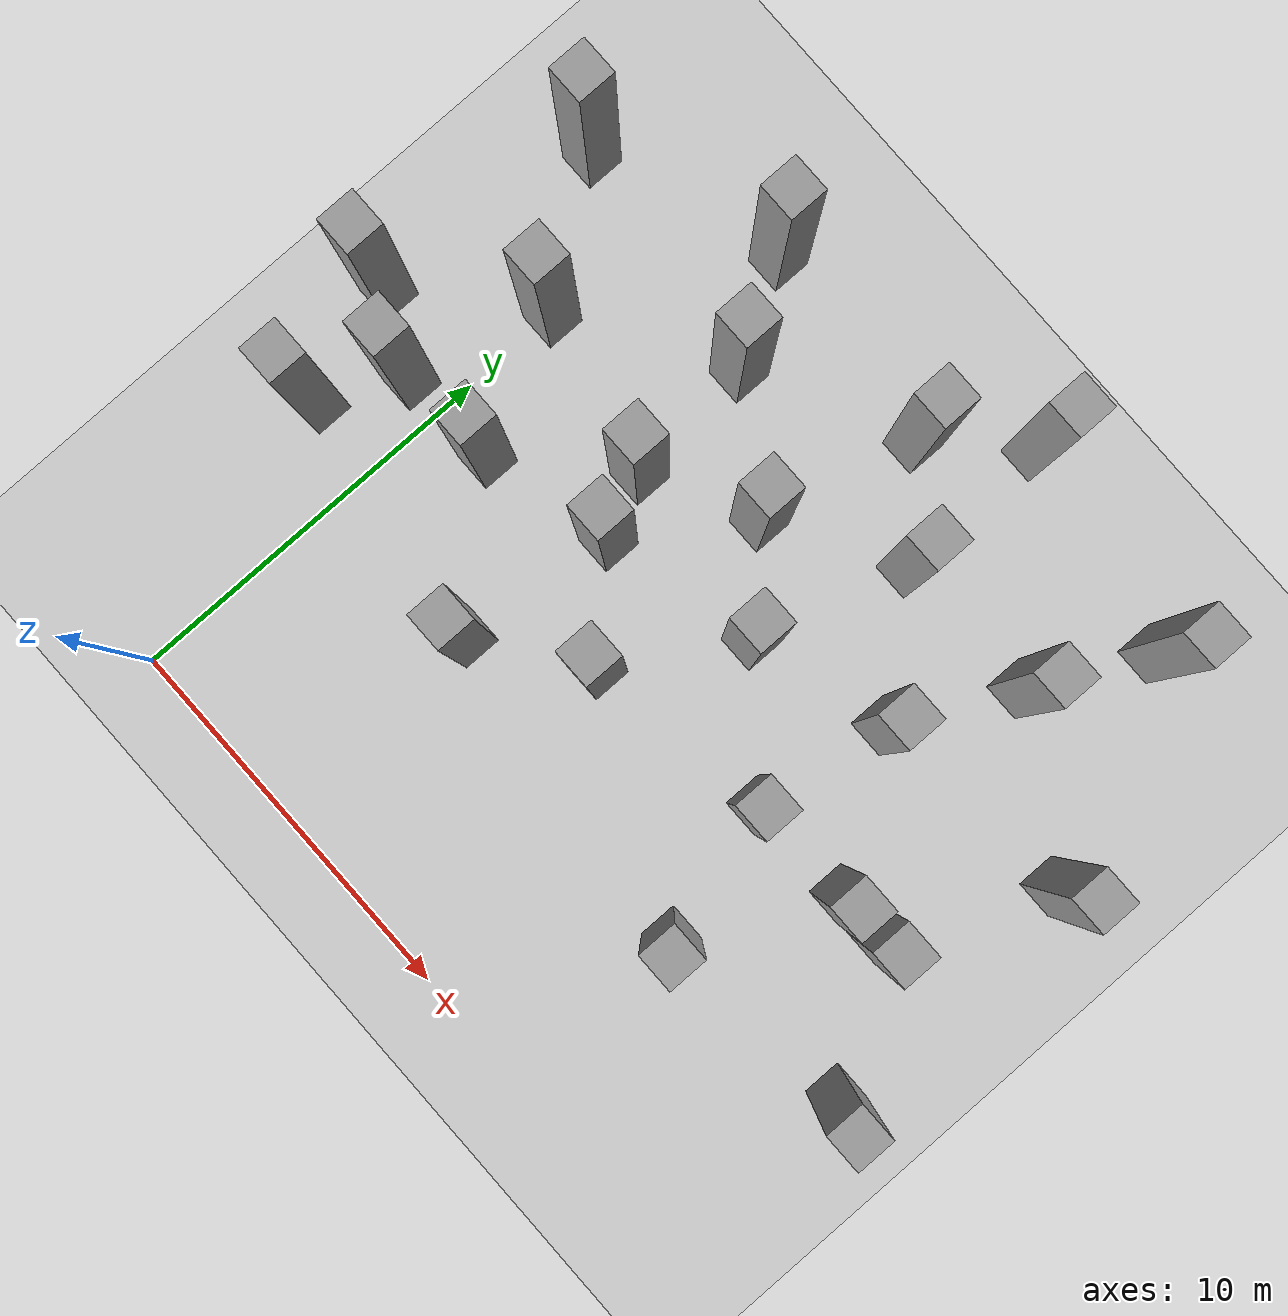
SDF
<sdf version="1.7">
 <world name="default">
  <model name="ground_plane">
   <static>1</static>
   <link name="link">
    <collision name="collision">
     <geometry><plane><normal>0 0 1</normal><size>100 100</size></plane></geometry>
     <surface>
      <contact><collide_bitmask>65535</collide_bitmask></contact>
      <friction><ode><mu>100</mu><mu2>50</mu2></ode></friction>
     </surface>
    </collision>
    <visual name="visual">
     <cast_shadows>0</cast_shadows>
     <geometry><plane><normal>0 0 1</normal><size>100 100</size></plane></geometry>
     <material>
      <script><uri>file://media/materials/scripts/gazebo.material</uri><name>Gazebo/Grey</name></script>
     </material>
    </visual>
   </link>
  </model>
  <model name="unit_box_static95">
   <link name="link">
    <inertial>
     <mass>1</mass>
     <inertia>
      <ixx>0.166667</ixx>
      <ixy>0</ixy>
      <ixz>0</ixz>
      <iyy>0.166667</iyy>
      <iyz>0</iyz>
      <izz>0.166667</izz>
     </inertia>
    </inertial>
    <visual name="visual">
     <geometry><box><size>1 1 8</size></box></geometry>
     <material>
      <script><name>Gazebo/Grey</name><uri>file://media/materials/scripts/gazebo.material</uri></script>
      <shader type="pixel"/>
     </material>
    </visual>
    <collision name="collision">
     <geometry><box><size>1 1 8</size></box></geometry>
     <surface>
      <friction>
       <ode><mu>1</mu><mu2>1</mu2><fdir1>0 0 0</fdir1><slip1>0</slip1><slip2>0</slip2></ode>
       <torsional>
        <coefficient>1</coefficient>
        <patch_radius>0</patch_radius>
        <surface_radius>0</surface_radius>
        <use_patch_radius>1</use_patch_radius>
        <ode><slip>0</slip></ode>
       </torsional>
      </friction>
      <bounce><restitution_coefficient>0</restitution_coefficient><threshold>1e+06</threshold></bounce>
      <contact>
       <collide_without_contact>0</collide_without_contact>
       <collide_without_contact_bitmask>1</collide_without_contact_bitmask>
       <collide_bitmask>1</collide_bitmask>
       <ode>
        <soft_cfm>0</soft_cfm>
        <soft_erp>0.2</soft_erp>
        <kp>1e+13</kp>
        <kd>1</kd>
        <max_vel>0.01</max_vel>
        <min_depth>0</min_depth>
       </ode>
       <bullet>
        <split_impulse>1</split_impulse>
        <split_impulse_penetration_threshold>-0.01</split_impulse_penetration_threshold>
        <soft_cfm>0</soft_cfm>
        <soft_erp>0.2</soft_erp>
        <kp>1e+13</kp>
        <kd>1</kd>
       </bullet>
      </contact>
     </surface>
    </collision>
   </link>
   <static>1</static>
   <pose>15.4272 17.8991 4 0 -0 0</pose>
  </model>
  <model name="unit_box_static95_clone_16">
   <link name="link">
    <inertial>
     <mass>1</mass>
     <inertia>
      <ixx>0.166667</ixx>
      <ixy>0</ixy>
      <ixz>0</ixz>
      <iyy>0.166667</iyy>
      <iyz>0</iyz>
      <izz>0.166667</izz>
     </inertia>
    </inertial>
    <visual name="visual">
     <geometry><box><size>1 1 8</size></box></geometry>
     <material>
      <script><name>Gazebo/Grey</name><uri>file://media/materials/scripts/gazebo.material</uri></script>
      <shader type="pixel"/>
     </material>
    </visual>
    <collision name="collision">
     <geometry><box><size>1 1 8</size></box></geometry>
     <surface>
      <friction>
       <ode><mu>1</mu><mu2>1</mu2><fdir1>0 0 0</fdir1><slip1>0</slip1><slip2>0</slip2></ode>
       <torsional>
        <coefficient>1</coefficient>
        <patch_radius>0</patch_radius>
        <surface_radius>0</surface_radius>
        <use_patch_radius>1</use_patch_radius>
        <ode><slip>0</slip></ode>
       </torsional>
      </friction>
      <bounce><restitution_coefficient>0</restitution_coefficient><threshold>1e+06</threshold></bounce>
      <contact>
       <collide_without_contact>0</collide_without_contact>
       <collide_without_contact_bitmask>1</collide_without_contact_bitmask>
       <collide_bitmask>1</collide_bitmask>
       <ode>
        <soft_cfm>0</soft_cfm>
        <soft_erp>0.2</soft_erp>
        <kp>1e+13</kp>
        <kd>1</kd>
        <max_vel>0.01</max_vel>
        <min_depth>0</min_depth>
       </ode>
       <bullet>
        <split_impulse>1</split_impulse>
        <split_impulse_penetration_threshold>-0.01</split_impulse_penetration_threshold>
        <soft_cfm>0</soft_cfm>
        <soft_erp>0.2</soft_erp>
        <kp>1e+13</kp>
        <kd>1</kd>
       </bullet>
      </contact>
     </surface>
    </collision>
   </link>
   <static>1</static>
   <pose>-2 7 4 0 -0 0</pose>
  </model>
  <model name="unit_box_static95_clone_20">
   <link name="link">
    <inertial>
     <mass>1</mass>
     <inertia>
      <ixx>0.166667</ixx>
      <ixy>0</ixy>
      <ixz>0</ixz>
      <iyy>0.166667</iyy>
      <iyz>0</iyz>
      <izz>0.166667</izz>
     </inertia>
    </inertial>
    <visual name="visual">
     <geometry><box><size>1 1 8</size></box></geometry>
     <material>
      <script><name>Gazebo/Grey</name><uri>file://media/materials/scripts/gazebo.material</uri></script>
      <shader type="pixel"/>
     </material>
    </visual>
    <collision name="collision">
     <geometry><box><size>1 1 8</size></box></geometry>
     <surface>
      <friction>
       <ode><mu>1</mu><mu2>1</mu2><fdir1>0 0 0</fdir1><slip1>0</slip1><slip2>0</slip2></ode>
       <torsional>
        <coefficient>1</coefficient>
        <patch_radius>0</patch_radius>
        <surface_radius>0</surface_radius>
        <use_patch_radius>1</use_patch_radius>
        <ode><slip>0</slip></ode>
       </torsional>
      </friction>
      <bounce><restitution_coefficient>0</restitution_coefficient><threshold>1e+06</threshold></bounce>
      <contact>
       <collide_without_contact>0</collide_without_contact>
       <collide_without_contact_bitmask>1</collide_without_contact_bitmask>
       <collide_bitmask>1</collide_bitmask>
       <ode>
        <soft_cfm>0</soft_cfm>
        <soft_erp>0.2</soft_erp>
        <kp>1e+13</kp>
        <kd>1</kd>
        <max_vel>0.01</max_vel>
        <min_depth>0</min_depth>
       </ode>
       <bullet>
        <split_impulse>1</split_impulse>
        <split_impulse_penetration_threshold>-0.01</split_impulse_penetration_threshold>
        <soft_cfm>0</soft_cfm>
        <soft_erp>0.2</soft_erp>
        <kp>1e+13</kp>
        <kd>1</kd>
       </bullet>
      </contact>
     </surface>
    </collision>
   </link>
   <static>1</static>
   <pose>4.54204 6 4 0 -0 0</pose>
  </model>
  <model name="unit_box_static95_clone_21">
   <link name="link">
    <inertial>
     <mass>1</mass>
     <inertia>
      <ixx>0.166667</ixx>
      <ixy>0</ixy>
      <ixz>0</ixz>
      <iyy>0.166667</iyy>
      <iyz>0</iyz>
      <izz>0.166667</izz>
     </inertia>
    </inertial>
    <visual name="visual">
     <geometry><box><size>1 1 8</size></box></geometry>
     <material>
      <script><name>Gazebo/Grey</name><uri>file://media/materials/scripts/gazebo.material</uri></script>
      <shader type="pixel"/>
     </material>
    </visual>
    <collision name="collision">
     <geometry><box><size>1 1 8</size></box></geometry>
     <surface>
      <friction>
       <ode><mu>1</mu><mu2>1</mu2><fdir1>0 0 0</fdir1><slip1>0</slip1><slip2>0</slip2></ode>
       <torsional>
        <coefficient>1</coefficient>
        <patch_radius>0</patch_radius>
        <surface_radius>0</surface_radius>
        <use_patch_radius>1</use_patch_radius>
        <ode><slip>0</slip></ode>
       </torsional>
      </friction>
      <bounce><restitution_coefficient>0</restitution_coefficient><threshold>1e+06</threshold></bounce>
      <contact>
       <collide_without_contact>0</collide_without_contact>
       <collide_without_contact_bitmask>1</collide_without_contact_bitmask>
       <collide_bitmask>1</collide_bitmask>
       <ode>
        <soft_cfm>0</soft_cfm>
        <soft_erp>0.2</soft_erp>
        <kp>1e+13</kp>
        <kd>1</kd>
        <max_vel>0.01</max_vel>
        <min_depth>0</min_depth>
       </ode>
       <bullet>
        <split_impulse>1</split_impulse>
        <split_impulse_penetration_threshold>-0.01</split_impulse_penetration_threshold>
        <soft_cfm>0</soft_cfm>
        <soft_erp>0.2</soft_erp>
        <kp>1e+13</kp>
        <kd>1</kd>
       </bullet>
      </contact>
     </surface>
    </collision>
   </link>
   <static>1</static>
   <pose>7.14101 7.81791 4 0 -0 0</pose>
  </model>
  <model name="unit_box_static95_clone_40">
   <link name="link">
    <inertial>
     <mass>1</mass>
     <inertia>
      <ixx>0.166667</ixx>
      <ixy>0</ixy>
      <ixz>0</ixz>
      <iyy>0.166667</iyy>
      <iyz>0</iyz>
      <izz>0.166667</izz>
     </inertia>
    </inertial>
    <visual name="visual">
     <geometry><box><size>1 1 8</size></box></geometry>
     <material>
      <script><name>Gazebo/Grey</name><uri>file://media/materials/scripts/gazebo.material</uri></script>
      <shader type="pixel"/>
     </material>
    </visual>
    <collision name="collision">
     <geometry><box><size>1 1 8</size></box></geometry>
     <surface>
      <friction>
       <ode><mu>1</mu><mu2>1</mu2><fdir1>0 0 0</fdir1><slip1>0</slip1><slip2>0</slip2></ode>
       <torsional>
        <coefficient>1</coefficient>
        <patch_radius>0</patch_radius>
        <surface_radius>0</surface_radius>
        <use_patch_radius>1</use_patch_radius>
        <ode><slip>0</slip></ode>
       </torsional>
      </friction>
      <bounce><restitution_coefficient>0</restitution_coefficient><threshold>1e+06</threshold></bounce>
      <contact>
       <collide_without_contact>0</collide_without_contact>
       <collide_without_contact_bitmask>1</collide_without_contact_bitmask>
       <collide_bitmask>1</collide_bitmask>
       <ode>
        <soft_cfm>0</soft_cfm>
        <soft_erp>0.2</soft_erp>
        <kp>1e+13</kp>
        <kd>1</kd>
        <max_vel>0.01</max_vel>
        <min_depth>0</min_depth>
       </ode>
       <bullet>
        <split_impulse>1</split_impulse>
        <split_impulse_penetration_threshold>-0.01</split_impulse_penetration_threshold>
        <soft_cfm>0</soft_cfm>
        <soft_erp>0.2</soft_erp>
        <kp>1e+13</kp>
        <kd>1</kd>
       </bullet>
      </contact>
     </surface>
    </collision>
   </link>
   <static>1</static>
   <pose>-3 10 4 0 -0 0</pose>
  </model>
  <model name="unit_box_static95_clone_41">
   <link name="link">
    <inertial>
     <mass>1</mass>
     <inertia>
      <ixx>0.166667</ixx>
      <ixy>0</ixy>
      <ixz>0</ixz>
      <iyy>0.166667</iyy>
      <iyz>0</iyz>
      <izz>0.166667</izz>
     </inertia>
    </inertial>
    <visual name="visual">
     <geometry><box><size>1 1 8</size></box></geometry>
     <material>
      <script><name>Gazebo/Grey</name><uri>file://media/materials/scripts/gazebo.material</uri></script>
      <shader type="pixel"/>
     </material>
    </visual>
    <collision name="collision">
     <geometry><box><size>1 1 8</size></box></geometry>
     <surface>
      <friction>
       <ode><mu>1</mu><mu2>1</mu2><fdir1>0 0 0</fdir1><slip1>0</slip1><slip2>0</slip2></ode>
       <torsional>
        <coefficient>1</coefficient>
        <patch_radius>0</patch_radius>
        <surface_radius>0</surface_radius>
        <use_patch_radius>1</use_patch_radius>
        <ode><slip>0</slip></ode>
       </torsional>
      </friction>
      <bounce><restitution_coefficient>0</restitution_coefficient><threshold>1e+06</threshold></bounce>
      <contact>
       <collide_without_contact>0</collide_without_contact>
       <collide_without_contact_bitmask>1</collide_without_contact_bitmask>
       <collide_bitmask>1</collide_bitmask>
       <ode>
        <soft_cfm>0</soft_cfm>
        <soft_erp>0.2</soft_erp>
        <kp>1e+13</kp>
        <kd>1</kd>
        <max_vel>0.01</max_vel>
        <min_depth>0</min_depth>
       </ode>
       <bullet>
        <split_impulse>1</split_impulse>
        <split_impulse_penetration_threshold>-0.01</split_impulse_penetration_threshold>
        <soft_cfm>0</soft_cfm>
        <soft_erp>0.2</soft_erp>
        <kp>1e+13</kp>
        <kd>1</kd>
       </bullet>
      </contact>
     </surface>
    </collision>
   </link>
   <static>1</static>
   <pose>1.60899 9.14534 4 0 -0 0</pose>
  </model>
  <model name="unit_box_static95_clone_42">
   <link name="link">
    <inertial>
     <mass>1</mass>
     <inertia>
      <ixx>0.166667</ixx>
      <ixy>0</ixy>
      <ixz>0</ixz>
      <iyy>0.166667</iyy>
      <iyz>0</iyz>
      <izz>0.166667</izz>
     </inertia>
    </inertial>
    <visual name="visual">
     <geometry><box><size>1 1 8</size></box></geometry>
     <material>
      <script><name>Gazebo/Grey</name><uri>file://media/materials/scripts/gazebo.material</uri></script>
      <shader type="pixel"/>
     </material>
    </visual>
    <collision name="collision">
     <geometry><box><size>1 1 8</size></box></geometry>
     <surface>
      <friction>
       <ode><mu>1</mu><mu2>1</mu2><fdir1>0 0 0</fdir1><slip1>0</slip1><slip2>0</slip2></ode>
       <torsional>
        <coefficient>1</coefficient>
        <patch_radius>0</patch_radius>
        <surface_radius>0</surface_radius>
        <use_patch_radius>1</use_patch_radius>
        <ode><slip>0</slip></ode>
       </torsional>
      </friction>
      <bounce><restitution_coefficient>0</restitution_coefficient><threshold>1e+06</threshold></bounce>
      <contact>
       <collide_without_contact>0</collide_without_contact>
       <collide_without_contact_bitmask>1</collide_without_contact_bitmask>
       <collide_bitmask>1</collide_bitmask>
       <ode>
        <soft_cfm>0</soft_cfm>
        <soft_erp>0.2</soft_erp>
        <kp>1e+13</kp>
        <kd>1</kd>
        <max_vel>0.01</max_vel>
        <min_depth>0</min_depth>
       </ode>
       <bullet>
        <split_impulse>1</split_impulse>
        <split_impulse_penetration_threshold>-0.01</split_impulse_penetration_threshold>
        <soft_cfm>0</soft_cfm>
        <soft_erp>0.2</soft_erp>
        <kp>1e+13</kp>
        <kd>1</kd>
       </bullet>
      </contact>
     </surface>
    </collision>
   </link>
   <static>1</static>
   <pose>2.58303 17.4887 4 0 -0 0</pose>
  </model>
  <model name="unit_box_static95_clone_43">
   <link name="link">
    <inertial>
     <mass>1</mass>
     <inertia>
      <ixx>0.166667</ixx>
      <ixy>0</ixy>
      <ixz>0</ixz>
      <iyy>0.166667</iyy>
      <iyz>0</iyz>
      <izz>0.166667</izz>
     </inertia>
    </inertial>
    <visual name="visual">
     <geometry><box><size>1 1 8</size></box></geometry>
     <material>
      <script><name>Gazebo/Grey</name><uri>file://media/materials/scripts/gazebo.material</uri></script>
      <shader type="pixel"/>
     </material>
    </visual>
    <collision name="collision">
     <geometry><box><size>1 1 8</size></box></geometry>
     <surface>
      <friction>
       <ode><mu>1</mu><mu2>1</mu2><fdir1>0 0 0</fdir1><slip1>0</slip1><slip2>0</slip2></ode>
       <torsional>
        <coefficient>1</coefficient>
        <patch_radius>0</patch_radius>
        <surface_radius>0</surface_radius>
        <use_patch_radius>1</use_patch_radius>
        <ode><slip>0</slip></ode>
       </torsional>
      </friction>
      <bounce><restitution_coefficient>0</restitution_coefficient><threshold>1e+06</threshold></bounce>
      <contact>
       <collide_without_contact>0</collide_without_contact>
       <collide_without_contact_bitmask>1</collide_without_contact_bitmask>
       <collide_bitmask>1</collide_bitmask>
       <ode>
        <soft_cfm>0</soft_cfm>
        <soft_erp>0.2</soft_erp>
        <kp>1e+13</kp>
        <kd>1</kd>
        <max_vel>0.01</max_vel>
        <min_depth>0</min_depth>
       </ode>
       <bullet>
        <split_impulse>1</split_impulse>
        <split_impulse_penetration_threshold>-0.01</split_impulse_penetration_threshold>
        <soft_cfm>0</soft_cfm>
        <soft_erp>0.2</soft_erp>
        <kp>1e+13</kp>
        <kd>1</kd>
       </bullet>
      </contact>
     </surface>
    </collision>
   </link>
   <static>1</static>
   <pose>4 15 4 0 -0 0</pose>
  </model>
  <model name="unit_box_static95_clone_44">
   <link name="link">
    <inertial>
     <mass>1</mass>
     <inertia>
      <ixx>0.166667</ixx>
      <ixy>0</ixy>
      <ixz>0</ixz>
      <iyy>0.166667</iyy>
      <iyz>0</iyz>
      <izz>0.166667</izz>
     </inertia>
    </inertial>
    <visual name="visual">
     <geometry><box><size>1 1 8</size></box></geometry>
     <material>
      <script><name>Gazebo/Grey</name><uri>file://media/materials/scripts/gazebo.material</uri></script>
      <shader type="pixel"/>
     </material>
    </visual>
    <collision name="collision">
     <geometry><box><size>1 1 8</size></box></geometry>
     <surface>
      <friction>
       <ode><mu>1</mu><mu2>1</mu2><fdir1>0 0 0</fdir1><slip1>0</slip1><slip2>0</slip2></ode>
       <torsional>
        <coefficient>1</coefficient>
        <patch_radius>0</patch_radius>
        <surface_radius>0</surface_radius>
        <use_patch_radius>1</use_patch_radius>
        <ode><slip>0</slip></ode>
       </torsional>
      </friction>
      <bounce><restitution_coefficient>0</restitution_coefficient><threshold>1e+06</threshold></bounce>
      <contact>
       <collide_without_contact>0</collide_without_contact>
       <collide_without_contact_bitmask>1</collide_without_contact_bitmask>
       <collide_bitmask>1</collide_bitmask>
       <ode>
        <soft_cfm>0</soft_cfm>
        <soft_erp>0.2</soft_erp>
        <kp>1e+13</kp>
        <kd>1</kd>
        <max_vel>0.01</max_vel>
        <min_depth>0</min_depth>
       </ode>
       <bullet>
        <split_impulse>1</split_impulse>
        <split_impulse_penetration_threshold>-0.01</split_impulse_penetration_threshold>
        <soft_cfm>0</soft_cfm>
        <soft_erp>0.2</soft_erp>
        <kp>1e+13</kp>
        <kd>1</kd>
       </bullet>
      </contact>
     </surface>
    </collision>
   </link>
   <static>1</static>
   <pose>7 13 4 0 -0 0</pose>
  </model>
  <model name="unit_box_static95_clone_45">
   <link name="link">
    <inertial>
     <mass>1</mass>
     <inertia>
      <ixx>0.166667</ixx>
      <ixy>0</ixy>
      <ixz>0</ixz>
      <iyy>0.166667</iyy>
      <iyz>0</iyz>
      <izz>0.166667</izz>
     </inertia>
    </inertial>
    <visual name="visual">
     <geometry><box><size>1 1 8</size></box></geometry>
     <material>
      <script><name>Gazebo/Grey</name><uri>file://media/materials/scripts/gazebo.material</uri></script>
      <shader type="pixel"/>
     </material>
    </visual>
    <collision name="collision">
     <geometry><box><size>1 1 8</size></box></geometry>
     <surface>
      <friction>
       <ode><mu>1</mu><mu2>1</mu2><fdir1>0 0 0</fdir1><slip1>0</slip1><slip2>0</slip2></ode>
       <torsional>
        <coefficient>1</coefficient>
        <patch_radius>0</patch_radius>
        <surface_radius>0</surface_radius>
        <use_patch_radius>1</use_patch_radius>
        <ode><slip>0</slip></ode>
       </torsional>
      </friction>
      <bounce><restitution_coefficient>0</restitution_coefficient><threshold>1e+06</threshold></bounce>
      <contact>
       <collide_without_contact>0</collide_without_contact>
       <collide_without_contact_bitmask>1</collide_without_contact_bitmask>
       <collide_bitmask>1</collide_bitmask>
       <ode>
        <soft_cfm>0</soft_cfm>
        <soft_erp>0.2</soft_erp>
        <kp>1e+13</kp>
        <kd>1</kd>
        <max_vel>0.01</max_vel>
        <min_depth>0</min_depth>
       </ode>
       <bullet>
        <split_impulse>1</split_impulse>
        <split_impulse_penetration_threshold>-0.01</split_impulse_penetration_threshold>
        <soft_cfm>0</soft_cfm>
        <soft_erp>0.2</soft_erp>
        <kp>1e+13</kp>
        <kd>1</kd>
       </bullet>
      </contact>
     </surface>
    </collision>
   </link>
   <static>1</static>
   <pose>12.535 12 4 0 -0 0</pose>
  </model>
  <model name="unit_box_static95_clone_46">
   <link name="link">
    <inertial>
     <mass>1</mass>
     <inertia>
      <ixx>0.166667</ixx>
      <ixy>0</ixy>
      <ixz>0</ixz>
      <iyy>0.166667</iyy>
      <iyz>0</iyz>
      <izz>0.166667</izz>
     </inertia>
    </inertial>
    <visual name="visual">
     <geometry><box><size>1 1 8</size></box></geometry>
     <material>
      <script><name>Gazebo/Grey</name><uri>file://media/materials/scripts/gazebo.material</uri></script>
      <shader type="pixel"/>
     </material>
    </visual>
    <collision name="collision">
     <geometry><box><size>1 1 8</size></box></geometry>
     <surface>
      <friction>
       <ode><mu>1</mu><mu2>1</mu2><fdir1>0 0 0</fdir1><slip1>0</slip1><slip2>0</slip2></ode>
       <torsional>
        <coefficient>1</coefficient>
        <patch_radius>0</patch_radius>
        <surface_radius>0</surface_radius>
        <use_patch_radius>1</use_patch_radius>
        <ode><slip>0</slip></ode>
       </torsional>
      </friction>
      <bounce><restitution_coefficient>0</restitution_coefficient><threshold>1e+06</threshold></bounce>
      <contact>
       <collide_without_contact>0</collide_without_contact>
       <collide_without_contact_bitmask>1</collide_without_contact_bitmask>
       <collide_bitmask>1</collide_bitmask>
       <ode>
        <soft_cfm>0</soft_cfm>
        <soft_erp>0.2</soft_erp>
        <kp>1e+13</kp>
        <kd>1</kd>
        <max_vel>0.01</max_vel>
        <min_depth>0</min_depth>
       </ode>
       <bullet>
        <split_impulse>1</split_impulse>
        <split_impulse_penetration_threshold>-0.01</split_impulse_penetration_threshold>
        <soft_cfm>0</soft_cfm>
        <soft_erp>0.2</soft_erp>
        <kp>1e+13</kp>
        <kd>1</kd>
       </bullet>
      </contact>
     </surface>
    </collision>
   </link>
   <static>1</static>
   <pose>14 15 4 0 -0 0</pose>
  </model>
  <model name="unit_box_static95_clone_47">
   <link name="link">
    <inertial>
     <mass>1</mass>
     <inertia>
      <ixx>0.166667</ixx>
      <ixy>0</ixy>
      <ixz>0</ixz>
      <iyy>0.166667</iyy>
      <iyz>0</iyz>
      <izz>0.166667</izz>
     </inertia>
    </inertial>
    <visual name="visual">
     <geometry><box><size>1 1 8</size></box></geometry>
     <material>
      <script><name>Gazebo/Grey</name><uri>file://media/materials/scripts/gazebo.material</uri></script>
      <shader type="pixel"/>
     </material>
    </visual>
    <collision name="collision">
     <geometry><box><size>1 1 8</size></box></geometry>
     <surface>
      <friction>
       <ode><mu>1</mu><mu2>1</mu2><fdir1>0 0 0</fdir1><slip1>0</slip1><slip2>0</slip2></ode>
       <torsional>
        <coefficient>1</coefficient>
        <patch_radius>0</patch_radius>
        <surface_radius>0</surface_radius>
        <use_patch_radius>1</use_patch_radius>
        <ode><slip>0</slip></ode>
       </torsional>
      </friction>
      <bounce><restitution_coefficient>0</restitution_coefficient><threshold>1e+06</threshold></bounce>
      <contact>
       <collide_without_contact>0</collide_without_contact>
       <collide_without_contact_bitmask>1</collide_without_contact_bitmask>
       <collide_bitmask>1</collide_bitmask>
       <ode>
        <soft_cfm>0</soft_cfm>
        <soft_erp>0.2</soft_erp>
        <kp>1e+13</kp>
        <kd>1</kd>
        <max_vel>0.01</max_vel>
        <min_depth>0</min_depth>
       </ode>
       <bullet>
        <split_impulse>1</split_impulse>
        <split_impulse_penetration_threshold>-0.01</split_impulse_penetration_threshold>
        <soft_cfm>0</soft_cfm>
        <soft_erp>0.2</soft_erp>
        <kp>1e+13</kp>
        <kd>1</kd>
       </bullet>
      </contact>
     </surface>
    </collision>
   </link>
   <static>1</static>
   <pose>10 19 4 0 -0 0</pose>
  </model>
  <model name="unit_box_static95_clone_48">
   <link name="link">
    <inertial>
     <mass>1</mass>
     <inertia>
      <ixx>0.166667</ixx>
      <ixy>0</ixy>
      <ixz>0</ixz>
      <iyy>0.166667</iyy>
      <iyz>0</iyz>
      <izz>0.166667</izz>
     </inertia>
    </inertial>
    <visual name="visual">
     <geometry><box><size>1 1 8</size></box></geometry>
     <material>
      <script><name>Gazebo/Grey</name><uri>file://media/materials/scripts/gazebo.material</uri></script>
      <shader type="pixel"/>
     </material>
    </visual>
    <collision name="collision">
     <geometry><box><size>1 1 8</size></box></geometry>
     <surface>
      <friction>
       <ode><mu>1</mu><mu2>1</mu2><fdir1>0 0 0</fdir1><slip1>0</slip1><slip2>0</slip2></ode>
       <torsional>
        <coefficient>1</coefficient>
        <patch_radius>0</patch_radius>
        <surface_radius>0</surface_radius>
        <use_patch_radius>1</use_patch_radius>
        <ode><slip>0</slip></ode>
       </torsional>
      </friction>
      <bounce><restitution_coefficient>0</restitution_coefficient><threshold>1e+06</threshold></bounce>
      <contact>
       <collide_without_contact>0</collide_without_contact>
       <collide_without_contact_bitmask>1</collide_without_contact_bitmask>
       <collide_bitmask>1</collide_bitmask>
       <ode>
        <soft_cfm>0</soft_cfm>
        <soft_erp>0.2</soft_erp>
        <kp>1e+13</kp>
        <kd>1</kd>
        <max_vel>0.01</max_vel>
        <min_depth>0</min_depth>
       </ode>
       <bullet>
        <split_impulse>1</split_impulse>
        <split_impulse_penetration_threshold>-0.01</split_impulse_penetration_threshold>
        <soft_cfm>0</soft_cfm>
        <soft_erp>0.2</soft_erp>
        <kp>1e+13</kp>
        <kd>1</kd>
       </bullet>
      </contact>
     </surface>
    </collision>
   </link>
   <static>1</static>
   <pose>9 11 4 0 -0 0</pose>
  </model>
  <model name="unit_box_static95_clone_49">
   <link name="link">
    <inertial>
     <mass>1</mass>
     <inertia>
      <ixx>0.166667</ixx>
      <ixy>0</ixy>
      <ixz>0</ixz>
      <iyy>0.166667</iyy>
      <iyz>0</iyz>
      <izz>0.166667</izz>
     </inertia>
    </inertial>
    <visual name="visual">
     <geometry><box><size>1 1 8</size></box></geometry>
     <material>
      <script><name>Gazebo/Grey</name><uri>file://media/materials/scripts/gazebo.material</uri></script>
      <shader type="pixel"/>
     </material>
    </visual>
    <collision name="collision">
     <geometry><box><size>1 1 8</size></box></geometry>
     <surface>
      <friction>
       <ode><mu>1</mu><mu2>1</mu2><fdir1>0 0 0</fdir1><slip1>0</slip1><slip2>0</slip2></ode>
       <torsional>
        <coefficient>1</coefficient>
        <patch_radius>0</patch_radius>
        <surface_radius>0</surface_radius>
        <use_patch_radius>1</use_patch_radius>
        <ode><slip>0</slip></ode>
       </torsional>
      </friction>
      <bounce><restitution_coefficient>0</restitution_coefficient><threshold>1e+06</threshold></bounce>
      <contact>
       <collide_without_contact>0</collide_without_contact>
       <collide_without_contact_bitmask>1</collide_without_contact_bitmask>
       <collide_bitmask>1</collide_bitmask>
       <ode>
        <soft_cfm>0</soft_cfm>
        <soft_erp>0.2</soft_erp>
        <kp>1e+13</kp>
        <kd>1</kd>
        <max_vel>0.01</max_vel>
        <min_depth>0</min_depth>
       </ode>
       <bullet>
        <split_impulse>1</split_impulse>
        <split_impulse_penetration_threshold>-0.01</split_impulse_penetration_threshold>
        <soft_cfm>0</soft_cfm>
        <soft_erp>0.2</soft_erp>
        <kp>1e+13</kp>
        <kd>1</kd>
       </bullet>
      </contact>
     </surface>
    </collision>
   </link>
   <static>1</static>
   <pose>5 10 4 0 -0 0</pose>
  </model>
  <model name="unit_box_static95_clone_50">
   <link name="link">
    <inertial>
     <mass>1</mass>
     <inertia>
      <ixx>0.166667</ixx>
      <ixy>0</ixy>
      <ixz>0</ixz>
      <iyy>0.166667</iyy>
      <iyz>0</iyz>
      <izz>0.166667</izz>
     </inertia>
    </inertial>
    <visual name="visual">
     <geometry><box><size>1 1 8</size></box></geometry>
     <material>
      <script><name>Gazebo/Grey</name><uri>file://media/materials/scripts/gazebo.material</uri></script>
      <shader type="pixel"/>
     </material>
    </visual>
    <collision name="collision">
     <geometry><box><size>1 1 8</size></box></geometry>
     <surface>
      <friction>
       <ode><mu>1</mu><mu2>1</mu2><fdir1>0 0 0</fdir1><slip1>0</slip1><slip2>0</slip2></ode>
       <torsional>
        <coefficient>1</coefficient>
        <patch_radius>0</patch_radius>
        <surface_radius>0</surface_radius>
        <use_patch_radius>1</use_patch_radius>
        <ode><slip>0</slip></ode>
       </torsional>
      </friction>
      <bounce><restitution_coefficient>0</restitution_coefficient><threshold>1e+06</threshold></bounce>
      <contact>
       <collide_without_contact>0</collide_without_contact>
       <collide_without_contact_bitmask>1</collide_without_contact_bitmask>
       <collide_bitmask>1</collide_bitmask>
       <ode>
        <soft_cfm>0</soft_cfm>
        <soft_erp>0.2</soft_erp>
        <kp>1e+13</kp>
        <kd>1</kd>
        <max_vel>0.01</max_vel>
        <min_depth>0</min_depth>
       </ode>
       <bullet>
        <split_impulse>1</split_impulse>
        <split_impulse_penetration_threshold>-0.01</split_impulse_penetration_threshold>
        <soft_cfm>0</soft_cfm>
        <soft_erp>0.2</soft_erp>
        <kp>1e+13</kp>
        <kd>1</kd>
       </bullet>
      </contact>
     </surface>
    </collision>
   </link>
   <static>1</static>
   <pose>0.063386 12.5238 4 0 -0 0</pose>
  </model>
  <model name="unit_box_static95_clone_51">
   <link name="link">
    <inertial>
     <mass>1</mass>
     <inertia>
      <ixx>0.166667</ixx>
      <ixy>0</ixy>
      <ixz>0</ixz>
      <iyy>0.166667</iyy>
      <iyz>0</iyz>
      <izz>0.166667</izz>
     </inertia>
    </inertial>
    <visual name="visual">
     <geometry><box><size>1 1 8</size></box></geometry>
     <material>
      <script><name>Gazebo/Grey</name><uri>file://media/materials/scripts/gazebo.material</uri></script>
      <shader type="pixel"/>
     </material>
    </visual>
    <collision name="collision">
     <geometry><box><size>1 1 8</size></box></geometry>
     <surface>
      <friction>
       <ode><mu>1</mu><mu2>1</mu2><fdir1>0 0 0</fdir1><slip1>0</slip1><slip2>0</slip2></ode>
       <torsional>
        <coefficient>1</coefficient>
        <patch_radius>0</patch_radius>
        <surface_radius>0</surface_radius>
        <use_patch_radius>1</use_patch_radius>
        <ode><slip>0</slip></ode>
       </torsional>
      </friction>
      <bounce><restitution_coefficient>0</restitution_coefficient><threshold>1e+06</threshold></bounce>
      <contact>
       <collide_without_contact>0</collide_without_contact>
       <collide_without_contact_bitmask>1</collide_without_contact_bitmask>
       <collide_bitmask>1</collide_bitmask>
       <ode>
        <soft_cfm>0</soft_cfm>
        <soft_erp>0.2</soft_erp>
        <kp>1e+13</kp>
        <kd>1</kd>
        <max_vel>0.01</max_vel>
        <min_depth>0</min_depth>
       </ode>
       <bullet>
        <split_impulse>1</split_impulse>
        <split_impulse_penetration_threshold>-0.01</split_impulse_penetration_threshold>
        <soft_cfm>0</soft_cfm>
        <soft_erp>0.2</soft_erp>
        <kp>1e+13</kp>
        <kd>1</kd>
       </bullet>
      </contact>
     </surface>
    </collision>
   </link>
   <static>1</static>
   <pose>8 17 4 0 -0 0</pose>
  </model>
  <model name="unit_box_static95_clone_52">
   <link name="link">
    <inertial>
     <mass>1</mass>
     <inertia>
      <ixx>0.166667</ixx>
      <ixy>0</ixy>
      <ixz>0</ixz>
      <iyy>0.166667</iyy>
      <iyz>0</iyz>
      <izz>0.166667</izz>
     </inertia>
    </inertial>
    <visual name="visual">
     <geometry><box><size>1 1 8</size></box></geometry>
     <material>
      <script><name>Gazebo/Grey</name><uri>file://media/materials/scripts/gazebo.material</uri></script>
      <shader type="pixel"/>
     </material>
    </visual>
    <collision name="collision">
     <geometry><box><size>1 1 8</size></box></geometry>
     <surface>
      <friction>
       <ode><mu>1</mu><mu2>1</mu2><fdir1>0 0 0</fdir1><slip1>0</slip1><slip2>0</slip2></ode>
       <torsional>
        <coefficient>1</coefficient>
        <patch_radius>0</patch_radius>
        <surface_radius>0</surface_radius>
        <use_patch_radius>1</use_patch_radius>
        <ode><slip>0</slip></ode>
       </torsional>
      </friction>
      <bounce><restitution_coefficient>0</restitution_coefficient><threshold>1e+06</threshold></bounce>
      <contact>
       <collide_without_contact>0</collide_without_contact>
       <collide_without_contact_bitmask>1</collide_without_contact_bitmask>
       <collide_bitmask>1</collide_bitmask>
       <ode>
        <soft_cfm>0</soft_cfm>
        <soft_erp>0.2</soft_erp>
        <kp>1e+13</kp>
        <kd>1</kd>
        <max_vel>0.01</max_vel>
        <min_depth>0</min_depth>
       </ode>
       <bullet>
        <split_impulse>1</split_impulse>
        <split_impulse_penetration_threshold>-0.01</split_impulse_penetration_threshold>
        <soft_cfm>0</soft_cfm>
        <soft_erp>0.2</soft_erp>
        <kp>1e+13</kp>
        <kd>1</kd>
       </bullet>
      </contact>
     </surface>
    </collision>
   </link>
   <static>1</static>
   <pose>12 8.53253 4 0 -0 0</pose>
  </model>
  <model name="unit_box_static95_clone_53">
   <link name="link">
    <inertial>
     <mass>1</mass>
     <inertia>
      <ixx>0.166667</ixx>
      <ixy>0</ixy>
      <ixz>0</ixz>
      <iyy>0.166667</iyy>
      <iyz>0</iyz>
      <izz>0.166667</izz>
     </inertia>
    </inertial>
    <visual name="visual">
     <geometry><box><size>1 1 8</size></box></geometry>
     <material>
      <script><name>Gazebo/Grey</name><uri>file://media/materials/scripts/gazebo.material</uri></script>
      <shader type="pixel"/>
     </material>
    </visual>
    <collision name="collision">
     <geometry><box><size>1 1 8</size></box></geometry>
     <surface>
      <friction>
       <ode><mu>1</mu><mu2>1</mu2><fdir1>0 0 0</fdir1><slip1>0</slip1><slip2>0</slip2></ode>
       <torsional>
        <coefficient>1</coefficient>
        <patch_radius>0</patch_radius>
        <surface_radius>0</surface_radius>
        <use_patch_radius>1</use_patch_radius>
        <ode><slip>0</slip></ode>
       </torsional>
      </friction>
      <bounce><restitution_coefficient>0</restitution_coefficient><threshold>1e+06</threshold></bounce>
      <contact>
       <collide_without_contact>0</collide_without_contact>
       <collide_without_contact_bitmask>1</collide_without_contact_bitmask>
       <collide_bitmask>1</collide_bitmask>
       <ode>
        <soft_cfm>0</soft_cfm>
        <soft_erp>0.2</soft_erp>
        <kp>1e+13</kp>
        <kd>1</kd>
        <max_vel>0.01</max_vel>
        <min_depth>0</min_depth>
       </ode>
       <bullet>
        <split_impulse>1</split_impulse>
        <split_impulse_penetration_threshold>-0.01</split_impulse_penetration_threshold>
        <soft_cfm>0</soft_cfm>
        <soft_erp>0.2</soft_erp>
        <kp>1e+13</kp>
        <kd>1</kd>
       </bullet>
      </contact>
     </surface>
    </collision>
   </link>
   <static>1</static>
   <pose>18.3113 5.48316 4 0 -0 0</pose>
  </model>
  <model name="unit_box_static95_clone_54">
   <link name="link">
    <inertial>
     <mass>1</mass>
     <inertia>
      <ixx>0.166667</ixx>
      <ixy>0</ixy>
      <ixz>0</ixz>
      <iyy>0.166667</iyy>
      <iyz>0</iyz>
      <izz>0.166667</izz>
     </inertia>
    </inertial>
    <visual name="visual">
     <geometry><box><size>1 1 8</size></box></geometry>
     <material>
      <script><name>Gazebo/Grey</name><uri>file://media/materials/scripts/gazebo.material</uri></script>
      <shader type="pixel"/>
     </material>
    </visual>
    <collision name="collision">
     <geometry><box><size>1 1 8</size></box></geometry>
     <surface>
      <friction>
       <ode><mu>1</mu><mu2>1</mu2><fdir1>0 0 0</fdir1><slip1>0</slip1><slip2>0</slip2></ode>
       <torsional>
        <coefficient>1</coefficient>
        <patch_radius>0</patch_radius>
        <surface_radius>0</surface_radius>
        <use_patch_radius>1</use_patch_radius>
        <ode><slip>0</slip></ode>
       </torsional>
      </friction>
      <bounce><restitution_coefficient>0</restitution_coefficient><threshold>1e+06</threshold></bounce>
      <contact>
       <collide_without_contact>0</collide_without_contact>
       <collide_without_contact_bitmask>1</collide_without_contact_bitmask>
       <collide_bitmask>1</collide_bitmask>
       <ode>
        <soft_cfm>0</soft_cfm>
        <soft_erp>0.2</soft_erp>
        <kp>1e+13</kp>
        <kd>1</kd>
        <max_vel>0.01</max_vel>
        <min_depth>0</min_depth>
       </ode>
       <bullet>
        <split_impulse>1</split_impulse>
        <split_impulse_penetration_threshold>-0.01</split_impulse_penetration_threshold>
        <soft_cfm>0</soft_cfm>
        <soft_erp>0.2</soft_erp>
        <kp>1e+13</kp>
        <kd>1</kd>
       </bullet>
      </contact>
     </surface>
    </collision>
   </link>
   <static>1</static>
   <pose>13 5 4 0 -0 0</pose>
  </model>
  <model name="unit_box_static95_clone_72">
   <link name="link">
    <inertial>
     <mass>1</mass>
     <inertia>
      <ixx>0.166667</ixx>
      <ixy>0</ixy>
      <ixz>0</ixz>
      <iyy>0.166667</iyy>
      <iyz>0</iyz>
      <izz>0.166667</izz>
     </inertia>
    </inertial>
    <visual name="visual">
     <geometry><box><size>1 1 8</size></box></geometry>
     <material>
      <script><name>Gazebo/Grey</name><uri>file://media/materials/scripts/gazebo.material</uri></script>
      <shader type="pixel"/>
     </material>
    </visual>
    <collision name="collision">
     <geometry><box><size>1 1 8</size></box></geometry>
     <surface>
      <friction>
       <ode><mu>1</mu><mu2>1</mu2><fdir1>0 0 0</fdir1><slip1>0</slip1><slip2>0</slip2></ode>
       <torsional>
        <coefficient>1</coefficient>
        <patch_radius>0</patch_radius>
        <surface_radius>0</surface_radius>
        <use_patch_radius>1</use_patch_radius>
        <ode><slip>0</slip></ode>
       </torsional>
      </friction>
      <bounce><restitution_coefficient>0</restitution_coefficient><threshold>1e+06</threshold></bounce>
      <contact>
       <collide_without_contact>0</collide_without_contact>
       <collide_without_contact_bitmask>1</collide_without_contact_bitmask>
       <collide_bitmask>1</collide_bitmask>
       <ode>
        <soft_cfm>0</soft_cfm>
        <soft_erp>0.2</soft_erp>
        <kp>1e+13</kp>
        <kd>1</kd>
        <max_vel>0.01</max_vel>
        <min_depth>0</min_depth>
       </ode>
       <bullet>
        <split_impulse>1</split_impulse>
        <split_impulse_penetration_threshold>-0.01</split_impulse_penetration_threshold>
        <soft_cfm>0</soft_cfm>
        <soft_erp>0.2</soft_erp>
        <kp>1e+13</kp>
        <kd>1</kd>
       </bullet>
      </contact>
     </surface>
    </collision>
   </link>
   <static>1</static>
   <pose>16.1414 8.66989 4 0 -0 0</pose>
  </model>
  <model name="unit_box_static95_clone_73">
   <link name="link">
    <inertial>
     <mass>1</mass>
     <inertia>
      <ixx>0.166667</ixx>
      <ixy>0</ixy>
      <ixz>0</ixz>
      <iyy>0.166667</iyy>
      <iyz>0</iyz>
      <izz>0.166667</izz>
     </inertia>
    </inertial>
    <visual name="visual">
     <geometry><box><size>1 1 8</size></box></geometry>
     <material>
      <script><name>Gazebo/Grey</name><uri>file://media/materials/scripts/gazebo.material</uri></script>
      <shader type="pixel"/>
     </material>
    </visual>
    <collision name="collision">
     <geometry><box><size>1 1 8</size></box></geometry>
     <surface>
      <friction>
       <ode><mu>1</mu><mu2>1</mu2><fdir1>0 0 0</fdir1><slip1>0</slip1><slip2>0</slip2></ode>
       <torsional>
        <coefficient>1</coefficient>
        <patch_radius>0</patch_radius>
        <surface_radius>0</surface_radius>
        <use_patch_radius>1</use_patch_radius>
        <ode><slip>0</slip></ode>
       </torsional>
      </friction>
      <bounce><restitution_coefficient>0</restitution_coefficient><threshold>1e+06</threshold></bounce>
      <contact>
       <collide_without_contact>0</collide_without_contact>
       <collide_without_contact_bitmask>1</collide_without_contact_bitmask>
       <collide_bitmask>1</collide_bitmask>
       <ode>
        <soft_cfm>0</soft_cfm>
        <soft_erp>0.2</soft_erp>
        <kp>1e+13</kp>
        <kd>1</kd>
        <max_vel>0.01</max_vel>
        <min_depth>0</min_depth>
       </ode>
       <bullet>
        <split_impulse>1</split_impulse>
        <split_impulse_penetration_threshold>-0.01</split_impulse_penetration_threshold>
        <soft_cfm>0</soft_cfm>
        <soft_erp>0.2</soft_erp>
        <kp>1e+13</kp>
        <kd>1</kd>
       </bullet>
      </contact>
     </surface>
    </collision>
   </link>
   <static>1</static>
   <pose>18 12.4955 4 0 -0 0</pose>
  </model>
  <model name="unit_box_static95_clone_91">
   <link name="link">
    <inertial>
     <mass>1</mass>
     <inertia>
      <ixx>0.166667</ixx>
      <ixy>0</ixy>
      <ixz>0</ixz>
      <iyy>0.166667</iyy>
      <iyz>0</iyz>
      <izz>0.166667</izz>
     </inertia>
    </inertial>
    <visual name="visual">
     <geometry><box><size>1 1 8</size></box></geometry>
     <material>
      <script><name>Gazebo/Grey</name><uri>file://media/materials/scripts/gazebo.material</uri></script>
      <shader type="pixel"/>
     </material>
    </visual>
    <collision name="collision">
     <geometry><box><size>1 1 8</size></box></geometry>
     <surface>
      <friction>
       <ode><mu>1</mu><mu2>1</mu2><fdir1>0 0 0</fdir1><slip1>0</slip1><slip2>0</slip2></ode>
       <torsional>
        <coefficient>1</coefficient>
        <patch_radius>0</patch_radius>
        <surface_radius>0</surface_radius>
        <use_patch_radius>1</use_patch_radius>
        <ode><slip>0</slip></ode>
       </torsional>
      </friction>
      <bounce><restitution_coefficient>0</restitution_coefficient><threshold>1e+06</threshold></bounce>
      <contact>
       <collide_without_contact>0</collide_without_contact>
       <collide_without_contact_bitmask>1</collide_without_contact_bitmask>
       <collide_bitmask>1</collide_bitmask>
       <ode>
        <soft_cfm>0</soft_cfm>
        <soft_erp>0.2</soft_erp>
        <kp>1e+13</kp>
        <kd>1</kd>
        <max_vel>0.01</max_vel>
        <min_depth>0</min_depth>
       </ode>
       <bullet>
        <split_impulse>1</split_impulse>
        <split_impulse_penetration_threshold>-0.01</split_impulse_penetration_threshold>
        <soft_cfm>0</soft_cfm>
        <soft_erp>0.2</soft_erp>
        <kp>1e+13</kp>
        <kd>1</kd>
       </bullet>
      </contact>
     </surface>
    </collision>
   </link>
   <static>1</static>
   <pose>-1 9 4 0 -0 0</pose>
  </model>
  <model name="unit_box_static95_clone_95">
   <link name="link">
    <inertial>
     <mass>1</mass>
     <inertia>
      <ixx>0.166667</ixx>
      <ixy>0</ixy>
      <ixz>0</ixz>
      <iyy>0.166667</iyy>
      <iyz>0</iyz>
      <izz>0.166667</izz>
     </inertia>
    </inertial>
    <visual name="visual">
     <geometry><box><size>1 1 8</size></box></geometry>
     <material>
      <script><name>Gazebo/Grey</name><uri>file://media/materials/scripts/gazebo.material</uri></script>
      <shader type="pixel"/>
     </material>
    </visual>
    <collision name="collision">
     <geometry><box><size>1 1 8</size></box></geometry>
     <surface>
      <friction>
       <ode><mu>1</mu><mu2>1</mu2><fdir1>0 0 0</fdir1><slip1>0</slip1><slip2>0</slip2></ode>
       <torsional>
        <coefficient>1</coefficient>
        <patch_radius>0</patch_radius>
        <surface_radius>0</surface_radius>
        <use_patch_radius>1</use_patch_radius>
        <ode><slip>0</slip></ode>
       </torsional>
      </friction>
      <bounce><restitution_coefficient>0</restitution_coefficient><threshold>1e+06</threshold></bounce>
      <contact>
       <collide_without_contact>0</collide_without_contact>
       <collide_without_contact_bitmask>1</collide_without_contact_bitmask>
       <collide_bitmask>1</collide_bitmask>
       <ode>
        <soft_cfm>0</soft_cfm>
        <soft_erp>0.2</soft_erp>
        <kp>1e+13</kp>
        <kd>1</kd>
        <max_vel>0.01</max_vel>
        <min_depth>0</min_depth>
       </ode>
       <bullet>
        <split_impulse>1</split_impulse>
        <split_impulse_penetration_threshold>-0.01</split_impulse_penetration_threshold>
        <soft_cfm>0</soft_cfm>
        <soft_erp>0.2</soft_erp>
        <kp>1e+13</kp>
        <kd>1</kd>
       </bullet>
      </contact>
     </surface>
    </collision>
   </link>
   <static>1</static>
   <pose>-2.23408 15.7798 4 0 -0 0</pose>
  </model>
  <model name="unit_box_static95_clone_104">
   <link name="link">
    <inertial>
     <mass>1</mass>
     <inertia>
      <ixx>0.166667</ixx>
      <ixy>0</ixy>
      <ixz>0</ixz>
      <iyy>0.166667</iyy>
      <iyz>0</iyz>
      <izz>0.166667</izz>
     </inertia>
    </inertial>
    <visual name="visual">
     <geometry><box><size>1 1 8</size></box></geometry>
     <material>
      <script><name>Gazebo/Grey</name><uri>file://media/materials/scripts/gazebo.material</uri></script>
      <shader type="pixel"/>
     </material>
    </visual>
    <collision name="collision">
     <geometry><box><size>1 1 8</size></box></geometry>
     <surface>
      <friction>
       <ode><mu>1</mu><mu2>1</mu2><fdir1>0 0 0</fdir1><slip1>0</slip1><slip2>0</slip2></ode>
       <torsional>
        <coefficient>1</coefficient>
        <patch_radius>0</patch_radius>
        <surface_radius>0</surface_radius>
        <use_patch_radius>1</use_patch_radius>
        <ode><slip>0</slip></ode>
       </torsional>
      </friction>
      <bounce><restitution_coefficient>0</restitution_coefficient><threshold>1e+06</threshold></bounce>
      <contact>
       <collide_without_contact>0</collide_without_contact>
       <collide_without_contact_bitmask>1</collide_without_contact_bitmask>
       <collide_bitmask>1</collide_bitmask>
       <ode>
        <soft_cfm>0</soft_cfm>
        <soft_erp>0.2</soft_erp>
        <kp>1e+13</kp>
        <kd>1</kd>
        <max_vel>0.01</max_vel>
        <min_depth>0</min_depth>
       </ode>
       <bullet>
        <split_impulse>1</split_impulse>
        <split_impulse_penetration_threshold>-0.01</split_impulse_penetration_threshold>
        <soft_cfm>0</soft_cfm>
        <soft_erp>0.2</soft_erp>
        <kp>1e+13</kp>
        <kd>1</kd>
       </bullet>
      </contact>
     </surface>
    </collision>
   </link>
   <static>1</static>
   <pose>10.1287 14.9105 4 0 -0 0</pose>
  </model>
  <model name="unit_box_static95_clone_105">
   <link name="link">
    <inertial>
     <mass>1</mass>
     <inertia>
      <ixx>0.166667</ixx>
      <ixy>0</ixy>
      <ixz>0</ixz>
      <iyy>0.166667</iyy>
      <iyz>0</iyz>
      <izz>0.166667</izz>
     </inertia>
    </inertial>
    <visual name="visual">
     <geometry><box><size>1 1 8</size></box></geometry>
     <material>
      <script><name>Gazebo/Grey</name><uri>file://media/materials/scripts/gazebo.material</uri></script>
      <shader type="pixel"/>
     </material>
    </visual>
    <collision name="collision">
     <geometry><box><size>1 1 8</size></box></geometry>
     <surface>
      <friction>
       <ode><mu>1</mu><mu2>1</mu2><fdir1>0 0 0</fdir1><slip1>0</slip1><slip2>0</slip2></ode>
       <torsional>
        <coefficient>1</coefficient>
        <patch_radius>0</patch_radius>
        <surface_radius>0</surface_radius>
        <use_patch_radius>1</use_patch_radius>
        <ode><slip>0</slip></ode>
       </torsional>
      </friction>
      <bounce><restitution_coefficient>0</restitution_coefficient><threshold>1e+06</threshold></bounce>
      <contact>
       <collide_without_contact>0</collide_without_contact>
       <collide_without_contact_bitmask>1</collide_without_contact_bitmask>
       <collide_bitmask>1</collide_bitmask>
       <ode>
        <soft_cfm>0</soft_cfm>
        <soft_erp>0.2</soft_erp>
        <kp>1e+13</kp>
        <kd>1</kd>
        <max_vel>0.01</max_vel>
        <min_depth>0</min_depth>
       </ode>
       <bullet>
        <split_impulse>1</split_impulse>
        <split_impulse_penetration_threshold>-0.01</split_impulse_penetration_threshold>
        <soft_cfm>0</soft_cfm>
        <soft_erp>0.2</soft_erp>
        <kp>1e+13</kp>
        <kd>1</kd>
       </bullet>
      </contact>
     </surface>
    </collision>
   </link>
   <static>1</static>
   <pose>4.28954 11.6003 4 0 -0 0</pose>
  </model>
  <model name="unit_box_static95_clone_52_clone">
   <link name="link">
    <inertial>
     <mass>1</mass>
     <inertia>
      <ixx>0.166667</ixx>
      <ixy>0</ixy>
      <ixz>0</ixz>
      <iyy>0.166667</iyy>
      <iyz>0</iyz>
      <izz>0.166667</izz>
     </inertia>
    </inertial>
    <visual name="visual">
     <geometry><box><size>1 1 8</size></box></geometry>
     <material>
      <script><name>Gazebo/Grey</name><uri>file://media/materials/scripts/gazebo.material</uri></script>
      <shader type="pixel"/>
     </material>
    </visual>
    <collision name="collision">
     <geometry><box><size>1 1 8</size></box></geometry>
     <surface>
      <friction>
       <ode><mu>1</mu><mu2>1</mu2><fdir1>0 0 0</fdir1><slip1>0</slip1><slip2>0</slip2></ode>
       <torsional>
        <coefficient>1</coefficient>
        <patch_radius>0</patch_radius>
        <surface_radius>0</surface_radius>
        <use_patch_radius>1</use_patch_radius>
        <ode><slip>0</slip></ode>
       </torsional>
      </friction>
      <bounce><restitution_coefficient>0</restitution_coefficient><threshold>1e+06</threshold></bounce>
      <contact>
       <collide_without_contact>0</collide_without_contact>
       <collide_without_contact_bitmask>1</collide_without_contact_bitmask>
       <collide_bitmask>1</collide_bitmask>
       <ode>
        <soft_cfm>0</soft_cfm>
        <soft_erp>0.2</soft_erp>
        <kp>1e+13</kp>
        <kd>1</kd>
        <max_vel>0.01</max_vel>
        <min_depth>0</min_depth>
       </ode>
       <bullet>
        <split_impulse>1</split_impulse>
        <split_impulse_penetration_threshold>-0.01</split_impulse_penetration_threshold>
        <soft_cfm>0</soft_cfm>
        <soft_erp>0.2</soft_erp>
        <kp>1e+13</kp>
        <kd>1</kd>
       </bullet>
      </contact>
     </surface>
    </collision>
   </link>
   <static>1</static>
   <pose>14.858 8.62811 4 0 -0 0</pose>
  </model>
 </world>
</sdf>
